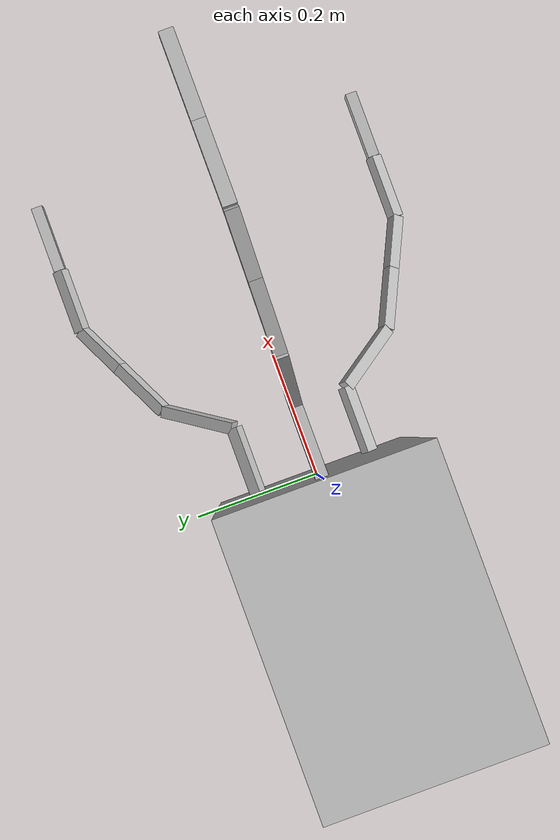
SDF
<?xml version="1.0" ?>
<sdf version="1.5">
<model name="four_bar_sdf">
<pose>0 0 0 0 0 0</pose>
<self_collide>true</self_collide>
<link name="linkROV">
<pose>-0.2286 0 0 0 0 0</pose>
<inertial>
<mass>1.0</mass>
<inertia>
<ixx>0.0227</ixx>
<iyy>0.0306</iyy>
<izz>0.0269</izz>
<ixy>0.0</ixy>
<ixz>0.0</ixz>
<iyz>0.0</iyz>
</inertia>
</inertial>
<collision name="linkROV_collision">
<geometry>
<box>
<size>0.4572 0.33805 0.39785</size>
</box>
</geometry>
</collision>
<visual name="linkROV_visual">
<geometry>
<box>
<size>0.4572 0.33805 0.39785</size>
</box>
</geometry>
<material>
<color rgba="0.3 0.3 0.3 1.0"/>
</material>
</visual>
</link>
<link name="arm1link1">
<pose>0.05750000 0.10000000 -0.10000000 -0.52359878 -0.00000000 0.00000000 </pose>
<inertial>
<mass>0.575</mass>
<inertia>
<ixx>3.8333e-05</ixx>
<iyy>6.5286e-04</iyy>
<izz>6.5286e-04</izz>
<ixy>0.0</ixy>
<ixz>0.0</ixz>
<iyz>0.0</iyz>
</inertia>
</inertial>
<collision name="arm1link1_collision">
<geometry>
<box>
<size>0.115 0.02 0.02</size>
</box>
</geometry>
</collision>
<visual name="arm1link1_visual">
<geometry>
<box>
<size>0.115 0.02 0.02</size>
</box>
</geometry>
<material>
<color rgba="0.3 0.3 0.3 1.0"/>
</material>
</visual>
</link>
<link name="arm1link2">
<pose>0.15000000 0.15250000 -0.13031089 -0.28103490 0.44783240 0.98279372 </pose>
<inertial>
<mass>0.700</mass>
<inertia>
<ixx>4.6667e-05</ixx>
<iyy>1.1667e-03</iyy>
<izz>1.1667e-03</izz>
<ixy>0.0</ixy>
<ixz>0.0</ixz>
<iyz>0.0</iyz>
</inertia>
</inertial>
<collision name="arm1link2_collision">
<geometry>
<box>
<size>0.140 0.02 0.02</size>
</box>
</geometry>
</collision>
<visual name="arm1link2_visual">
<geometry>
<box>
<size>0.140 0.02 0.02</size>
</box>
</geometry>
<material>
<color rgba="0.3 0.3 0.3 1.0"/>
</material>
</visual>
</link>
<link name="arm1link3">
<pose>0.23479646 0.22989823 -0.17499678 -0.46364761 0.25268026 0.46364761 </pose>
<inertial>
<mass>0.575</mass>
<inertia>
<ixx>3.8333e-05</ixx>
<iyy>6.5286e-04</iyy>
<izz>6.5286e-04</izz>
<ixy>0.0</ixy>
<ixz>0.0</ixz>
<iyz>0.0</iyz>
</inertia>
</inertial>
<collision name="arm1link3_collision">
<geometry>
<box>
<size>0.115 0.02 0.02</size>
</box>
</geometry>
</collision>
<visual name="arm1link3_visual">
<geometry>
<box>
<size>0.115 0.02 0.02</size>
</box>
</geometry>
<material>
<color rgba="0.3 0.3 0.3 1.0"/>
</material>
</visual>
</link>
<link name="arm1link4">
<pose>0.32789419 0.27644710 -0.20187178 -0.46364761 0.25268026 0.46364761 </pose>
<inertial>
<mass>0.500</mass>
<inertia>
<ixx>3.3333e-05</ixx>
<iyy>4.3333e-04</iyy>
<izz>4.3333e-04</izz>
<ixy>0.0</ixy>
<ixz>0.0</ixz>
<iyz>0.0</iyz>
</inertia>
</inertial>
<collision name="arm1link4_collision">
<geometry>
<box>
<size>0.100 0.02 0.02</size>
</box>
</geometry>
</collision>
<visual name="arm1link4_visual">
<geometry>
<box>
<size>0.100 0.02 0.02</size>
</box>
</geometry>
<material>
<color rgba="0.3 0.3 0.3 1.0"/>
</material>
</visual>
</link>
<link name="arm1link5">
<pose>0.42869546 0.29809773 -0.21437178 -0.52359878 -0.00000000 0.00000000 </pose>
<inertial>
<mass>0.575</mass>
<inertia>
<ixx>3.8333e-05</ixx>
<iyy>6.5286e-04</iyy>
<izz>6.5286e-04</izz>
<ixy>0.0</ixy>
<ixz>0.0</ixz>
<iyz>0.0</iyz>
</inertia>
</inertial>
<collision name="arm1link5_collision">
<geometry>
<box>
<size>0.115 0.02 0.02</size>
</box>
</geometry>
</collision>
<visual name="arm1link5_visual">
<geometry>
<box>
<size>0.115 0.02 0.02</size>
</box>
</geometry>
<material>
<color rgba="0.3 0.3 0.3 1.0"/>
</material>
</visual>
</link>
<link name="arm1link6">
<pose>0.54619546 0.29809773 -0.21437178 0.00000000 -0.00000000 0.00000000 </pose>
<inertial>
<mass>0.600</mass>
<inertia>
<ixx>4.0000e-05</ixx>
<iyy>7.4000e-04</iyy>
<izz>7.4000e-04</izz>
<ixy>0.0</ixy>
<ixz>0.0</ixz>
<iyz>0.0</iyz>
</inertia>
</inertial>
<collision name="arm1link6_collision">
<geometry>
<box>
<size>0.120 0.02 0.02</size>
</box>
</geometry>
</collision>
<visual name="arm1link6_visual">
<geometry>
<box>
<size>0.120 0.02 0.02</size>
</box>
</geometry>
<material>
<color rgba="0.3 0.3 0.3 1.0"/>
</material>
</visual>
</link>
<link name="arm2link1">
<pose>0.05750000 -0.10000000 -0.10000000 0.52360000 0.00000000 0.00000000 </pose>
<inertial>
<mass>0.575</mass>
<inertia>
<ixx>3.8333e-05</ixx>
<iyy>6.5286e-04</iyy>
<izz>6.5286e-04</izz>
<ixy>0.0</ixy>
<ixz>0.0</ixz>
<iyz>0.0</iyz>
</inertia>
</inertial>
<collision name="arm2link1_collision">
<geometry>
<box>
<size>0.115 0.02 0.02</size>
</box>
</geometry>
</collision>
<visual name="arm2link1_visual">
<geometry>
<box>
<size>0.115 0.02 0.02</size>
</box>
</geometry>
<material>
<color rgba="0.3 0.3 0.3 1.0"/>
</material>
</visual>
</link>
<link name="arm2link2">
<pose>0.15000000 -0.15250000 -0.13031000 0.28103000 0.44783000 -0.98279000 </pose>
<inertial>
<mass>0.700</mass>
<inertia>
<ixx>4.6667e-05</ixx>
<iyy>1.1667e-03</iyy>
<izz>1.1667e-03</izz>
<ixy>0.0</ixy>
<ixz>0.0</ixz>
<iyz>0.0</iyz>
</inertia>
</inertial>
<collision name="arm2link2_collision">
<geometry>
<box>
<size>0.140 0.02 0.02</size>
</box>
</geometry>
</collision>
<visual name="arm2link2_visual">
<geometry>
<box>
<size>0.140 0.02 0.02</size>
</box>
</geometry>
<material>
<color rgba="0.3 0.3 0.3 1.0"/>
</material>
</visual>
</link>
<link name="arm2link3">
<pose>0.23480000 -0.22990000 -0.17500000 0.46365000 0.25268000 -0.46365000 </pose>
<inertial>
<mass>0.575</mass>
<inertia>
<ixx>3.8333e-05</ixx>
<iyy>6.5286e-04</iyy>
<izz>6.5286e-04</izz>
<ixy>0.0</ixy>
<ixz>0.0</ixz>
<iyz>0.0</iyz>
</inertia>
</inertial>
<collision name="arm2link3_collision">
<geometry>
<box>
<size>0.115 0.02 0.02</size>
</box>
</geometry>
</collision>
<visual name="arm2link3_visual">
<geometry>
<box>
<size>0.115 0.02 0.02</size>
</box>
</geometry>
<material>
<color rgba="0.3 0.3 0.3 1.0"/>
</material>
</visual>
</link>
<link name="arm2link4">
<pose>0.32789000 -0.27645000 -0.20187000 0.46365000 0.25268000 -0.46365000 </pose>
<inertial>
<mass>0.500</mass>
<inertia>
<ixx>3.3333e-05</ixx>
<iyy>4.3333e-04</iyy>
<izz>4.3333e-04</izz>
<ixy>0.0</ixy>
<ixz>0.0</ixz>
<iyz>0.0</iyz>
</inertia>
</inertial>
<collision name="arm2link4_collision">
<geometry>
<box>
<size>0.100 0.02 0.02</size>
</box>
</geometry>
</collision>
<visual name="arm2link4_visual">
<geometry>
<box>
<size>0.100 0.02 0.02</size>
</box>
</geometry>
<material>
<color rgba="0.3 0.3 0.3 1.0"/>
</material>
</visual>
</link>
<link name="arm2link5">
<pose>0.42870000 -0.29810000 -0.21437000 0.52360000 0.00000000 0.00000000 </pose>
<inertial>
<mass>0.575</mass>
<inertia>
<ixx>3.8333e-05</ixx>
<iyy>6.5286e-04</iyy>
<izz>6.5286e-04</izz>
<ixy>0.0</ixy>
<ixz>0.0</ixz>
<iyz>0.0</iyz>
</inertia>
</inertial>
<collision name="arm2link5_collision">
<geometry>
<box>
<size>0.115 0.02 0.02</size>
</box>
</geometry>
</collision>
<visual name="arm2link5_visual">
<geometry>
<box>
<size>0.115 0.02 0.02</size>
</box>
</geometry>
<material>
<color rgba="0.3 0.3 0.3 1.0"/>
</material>
</visual>
</link>
<link name="arm2link6">
<pose>0.54620000 -0.29810000 -0.21437000 0.00000000 0.00000000 0.00000000 </pose>
<inertial>
<mass>0.600</mass>
<inertia>
<ixx>4.0000e-05</ixx>
<iyy>7.4000e-04</iyy>
<izz>7.4000e-04</izz>
<ixy>0.0</ixy>
<ixz>0.0</ixz>
<iyz>0.0</iyz>
</inertia>
</inertial>
<collision name="arm2link6_collision">
<geometry>
<box>
<size>0.120 0.02 0.02</size>
</box>
</geometry>
</collision>
<visual name="arm2link6_visual">
<geometry>
<box>
<size>0.120 0.02 0.02</size>
</box>
</geometry>
<material>
<color rgba="0.3 0.3 0.3 1.0"/>
</material>
</visual>
</link>
<link name="arm3link1">
<pose>0.05750000 0.00000000 0.14142000 1.57080000 0.00000000 0.00000000 </pose>
<inertial>
<mass>0.575</mass>
<inertia>
<ixx>3.8333e-05</ixx>
<iyy>6.5286e-04</iyy>
<izz>6.5286e-04</izz>
<ixy>0.0</ixy>
<ixz>0.0</ixz>
<iyz>0.0</iyz>
</inertia>
</inertial>
<collision name="arm3link1_collision">
<geometry>
<box>
<size>0.115 0.02 0.02</size>
</box>
</geometry>
</collision>
<visual name="arm3link1_visual">
<geometry>
<box>
<size>0.115 0.02 0.02</size>
</box>
</geometry>
<material>
<color rgba="0.3 0.3 0.3 1.0"/>
</material>
</visual>
</link>
<link name="arm3link2">
<pose>0.15000000 0.00000000 0.20204000 1.57080000 -1.04720000 0.00000000 </pose>
<inertial>
<mass>0.700</mass>
<inertia>
<ixx>4.6667e-05</ixx>
<iyy>1.1667e-03</iyy>
<izz>1.1667e-03</izz>
<ixy>0.0</ixy>
<ixz>0.0</ixz>
<iyz>0.0</iyz>
</inertia>
</inertial>
<collision name="arm3link2_collision">
<geometry>
<box>
<size>0.140 0.02 0.02</size>
</box>
</geometry>
</collision>
<visual name="arm3link2_visual">
<geometry>
<box>
<size>0.140 0.02 0.02</size>
</box>
</geometry>
<material>
<color rgba="0.3 0.3 0.3 1.0"/>
</material>
</visual>
</link>
<link name="arm3link3">
<pose>0.23480000 0.00000000 0.29141000 1.57080000 -0.52360000 0.00000000 </pose>
<inertial>
<mass>0.575</mass>
<inertia>
<ixx>3.8333e-05</ixx>
<iyy>6.5286e-04</iyy>
<izz>6.5286e-04</izz>
<ixy>0.0</ixy>
<ixz>0.0</ixz>
<iyz>0.0</iyz>
</inertia>
</inertial>
<collision name="arm3link3_collision">
<geometry>
<box>
<size>0.115 0.02 0.02</size>
</box>
</geometry>
</collision>
<visual name="arm3link3_visual">
<geometry>
<box>
<size>0.115 0.02 0.02</size>
</box>
</geometry>
<material>
<color rgba="0.3 0.3 0.3 1.0"/>
</material>
</visual>
</link>
<link name="arm3link4">
<pose>0.32789000 0.00000000 0.34516000 1.57080000 -0.52360000 0.00000000 </pose>
<inertial>
<mass>0.500</mass>
<inertia>
<ixx>3.3333e-05</ixx>
<iyy>4.3333e-04</iyy>
<izz>4.3333e-04</izz>
<ixy>0.0</ixy>
<ixz>0.0</ixz>
<iyz>0.0</iyz>
</inertia>
</inertial>
<collision name="arm3link4_collision">
<geometry>
<box>
<size>0.100 0.02 0.02</size>
</box>
</geometry>
</collision>
<visual name="arm3link4_visual">
<geometry>
<box>
<size>0.100 0.02 0.02</size>
</box>
</geometry>
<material>
<color rgba="0.3 0.3 0.3 1.0"/>
</material>
</visual>
</link>
<link name="arm3link5">
<pose>0.42870000 0.00000000 0.37016000 1.57080000 -0.00000000 0.00000000 </pose>
<inertial>
<mass>0.575</mass>
<inertia>
<ixx>3.8333e-05</ixx>
<iyy>6.5286e-04</iyy>
<izz>6.5286e-04</izz>
<ixy>0.0</ixy>
<ixz>0.0</ixz>
<iyz>0.0</iyz>
</inertia>
</inertial>
<collision name="arm3link5_collision">
<geometry>
<box>
<size>0.115 0.02 0.02</size>
</box>
</geometry>
</collision>
<visual name="arm3link5_visual">
<geometry>
<box>
<size>0.115 0.02 0.02</size>
</box>
</geometry>
<material>
<color rgba="0.3 0.3 0.3 1.0"/>
</material>
</visual>
</link>
<link name="arm3link6">
<pose>0.54620000 0.00000000 0.37016000 0.00000000 -0.00000000 0.00000000 </pose>
<inertial>
<mass>0.600</mass>
<inertia>
<ixx>4.0000e-05</ixx>
<iyy>7.4000e-04</iyy>
<izz>7.4000e-04</izz>
<ixy>0.0</ixy>
<ixz>0.0</ixz>
<iyz>0.0</iyz>
</inertia>
</inertial>
<collision name="arm3link6_collision">
<geometry>
<box>
<size>0.120 0.02 0.02</size>
</box>
</geometry>
</collision>
<visual name="arm3link6_visual">
<geometry>
<box>
<size>0.120 0.02 0.02</size>
</box>
</geometry>
<material>
<color rgba="0.3 0.3 0.3 1.0"/>
</material>
</visual>
</link>
<joint name="arm1_jointgrip" type="fixed">
<pose>0 0 0 0 0 0</pose>
<parent>world</parent>
<child>arm1link6</child>
</joint>
<joint name="arm1_joint1" type="revolute">
<pose>0 0 0 0 0 0</pose>
<parent>linkROV</parent>
<child>arm1link1</child>
<axis>
<xyz>1 0 0</xyz>
<dynamics>
<damping>0.05</damping>
<friction>0</friction>
<spring_reference>0</spring_reference>
<spring_stiffness>10.0</spring_stiffness>
</dynamics>
</axis>
</joint>
<joint name="arm1_joint2" type="revolute">
<pose>-0.07 0 0 0 0 0</pose>
<parent>arm1link1</parent>
<child>arm1link2</child>
<axis>
<xyz>0 0 1</xyz>
<dynamics>
<damping>0.05</damping>
<friction>0</friction>
<spring_reference>0</spring_reference>
<spring_stiffness>10.0</spring_stiffness>
</dynamics>
</axis>
</joint>
<joint name="arm1_joint3" type="revolute">
<pose>-0.0575 0 0 0 0 0</pose>
<parent>arm1link2</parent>
<child>arm1link3</child>
<axis>
<xyz>0 0 1</xyz>
<dynamics>
<damping>0.05</damping>
<friction>0</friction>
<spring_reference>0</spring_reference>
<spring_stiffness>10.0</spring_stiffness>
</dynamics>
</axis>
</joint>
<joint name="arm1_joint4" type="revolute">
<pose>-0.05 0 0 0 0 0</pose>
<parent>arm1link3</parent>
<child>arm1link4</child>
<axis>
<xyz>1 0 0</xyz>
<dynamics>
<damping>0.05</damping>
<friction>0</friction>
<spring_reference>0</spring_reference>
<spring_stiffness>10.0</spring_stiffness>
</dynamics>
</axis>
</joint>
<joint name="arm1_joint5" type="revolute">
<pose>-0.0575 0 0 0 0 0</pose>
<parent>arm1link4</parent>
<child>arm1link5</child>
<axis>
<xyz>0 0 1</xyz>
<dynamics>
<damping>0.05</damping>
<friction>0</friction>
<spring_reference>0</spring_reference>
<spring_stiffness>10.0</spring_stiffness>
</dynamics>
</axis>
</joint>
<joint name="arm1_joint6" type="revolute">
<pose>-0.06 0 0 0 0 0</pose>
<parent>arm1link5</parent>
<child>arm1link6</child>
<axis>
<xyz>1 0 0</xyz>
<dynamics>
<damping>0.05</damping>
<friction>0</friction>
<spring_reference>0</spring_reference>
<spring_stiffness>10.0</spring_stiffness>
</dynamics>
</axis>
</joint>
<joint name="arm2_jointgrip" type="fixed">
<pose>0 0 0 0 0 0</pose>
<parent>world</parent>
<child>arm2link6</child>
</joint>
<joint name="arm2_joint1" type="revolute">
<pose>0 0 0 0 0 0</pose>
<parent>linkROV</parent>
<child>arm2link1</child>
<axis>
<xyz>1 0 0</xyz>
<dynamics>
<damping>0.05</damping>
<friction>0</friction>
<spring_reference>0</spring_reference>
<spring_stiffness>10.0</spring_stiffness>
</dynamics>
</axis>
</joint>
<joint name="arm2_joint2" type="revolute">
<pose>-0.07 0 0 0 0 0</pose>
<parent>arm2link1</parent>
<child>arm2link2</child>
<axis>
<xyz>0 0 1</xyz>
<dynamics>
<damping>0.05</damping>
<friction>0</friction>
<spring_reference>0</spring_reference>
<spring_stiffness>10.0</spring_stiffness>
</dynamics>
</axis>
</joint>
<joint name="arm2_joint3" type="revolute">
<pose>-0.0575 0 0 0 0 0</pose>
<parent>arm2link2</parent>
<child>arm2link3</child>
<axis>
<xyz>0 0 1</xyz>
<dynamics>
<damping>0.05</damping>
<friction>0</friction>
<spring_reference>0</spring_reference>
<spring_stiffness>10.0</spring_stiffness>
</dynamics>
</axis>
</joint>
<joint name="arm2_joint4" type="revolute">
<pose>-0.05 0 0 0 0 0</pose>
<parent>arm2link3</parent>
<child>arm2link4</child>
<axis>
<xyz>1 0 0</xyz>
<dynamics>
<damping>0.05</damping>
<friction>0</friction>
<spring_reference>0</spring_reference>
<spring_stiffness>10.0</spring_stiffness>
</dynamics>
</axis>
</joint>
<joint name="arm2_joint5" type="revolute">
<pose>-0.0575 0 0 0 0 0</pose>
<parent>arm2link4</parent>
<child>arm2link5</child>
<axis>
<xyz>0 0 1</xyz>
<dynamics>
<damping>0.05</damping>
<friction>0</friction>
<spring_reference>0</spring_reference>
<spring_stiffness>10.0</spring_stiffness>
</dynamics>
</axis>
</joint>
<joint name="arm2_joint6" type="revolute">
<pose>-0.06 0 0 0 0 0</pose>
<parent>arm2link5</parent>
<child>arm2link6</child>
<axis>
<xyz>1 0 0</xyz>
<dynamics>
<damping>0.05</damping>
<friction>0</friction>
<spring_reference>0</spring_reference>
<spring_stiffness>10.0</spring_stiffness>
</dynamics>
</axis>
</joint>
<joint name="arm3_jointgrip" type="fixed">
<pose>0 0 0 0 0 0</pose>
<parent>world</parent>
<child>arm3link6</child>
</joint>
<joint name="arm3_joint1" type="revolute">
<pose>0 0 0 0 0 0</pose>
<parent>linkROV</parent>
<child>arm3link1</child>
<axis>
<xyz>1 0 0</xyz>
<dynamics>
<damping>0.05</damping>
<friction>0</friction>
<spring_reference>0</spring_reference>
<spring_stiffness>10.0</spring_stiffness>
</dynamics>
</axis>
</joint>
<joint name="arm3_joint2" type="revolute">
<pose>-0.07 0 0 0 0 0</pose>
<parent>arm3link1</parent>
<child>arm3link2</child>
<axis>
<xyz>0 0 1</xyz>
<dynamics>
<damping>0.05</damping>
<friction>0</friction>
<spring_reference>0</spring_reference>
<spring_stiffness>10.0</spring_stiffness>
</dynamics>
</axis>
</joint>
<joint name="arm3_joint3" type="revolute">
<pose>-0.0575 0 0 0 0 0</pose>
<parent>arm3link2</parent>
<child>arm3link3</child>
<axis>
<xyz>0 0 1</xyz>
<dynamics>
<damping>0.05</damping>
<friction>0</friction>
<spring_reference>0</spring_reference>
<spring_stiffness>10.0</spring_stiffness>
</dynamics>
</axis>
</joint>
<joint name="arm3_joint4" type="revolute">
<pose>-0.05 0 0 0 0 0</pose>
<parent>arm3link3</parent>
<child>arm3link4</child>
<axis>
<xyz>1 0 0</xyz>
<dynamics>
<damping>0.05</damping>
<friction>0</friction>
<spring_reference>0</spring_reference>
<spring_stiffness>10.0</spring_stiffness>
</dynamics>
</axis>
</joint>
<joint name="arm3_joint5" type="revolute">
<pose>-0.0575 0 0 0 0 0</pose>
<parent>arm3link4</parent>
<child>arm3link5</child>
<axis>
<xyz>0 0 1</xyz>
<dynamics>
<damping>0.05</damping>
<friction>0</friction>
<spring_reference>0</spring_reference>
<spring_stiffness>10.0</spring_stiffness>
</dynamics>
</axis>
</joint>
<joint name="arm3_joint6" type="revolute">
<pose>-0.06 0 0 0 0 0</pose>
<parent>arm3link5</parent>
<child>arm3link6</child>
<axis>
<xyz>1 0 0</xyz>
<dynamics>
<damping>0.05</damping>
<friction>0</friction>
<spring_reference>0</spring_reference>
<spring_stiffness>10.0</spring_stiffness>
</dynamics>
</axis>
</joint>
</model>
</sdf>
